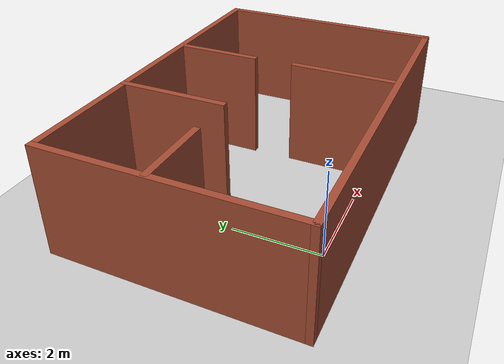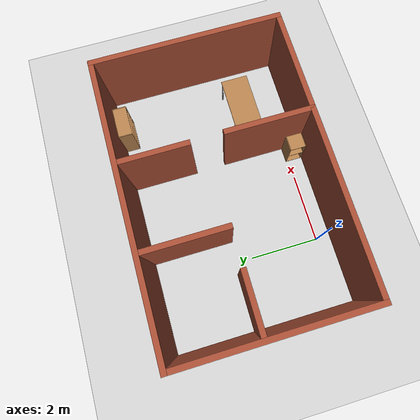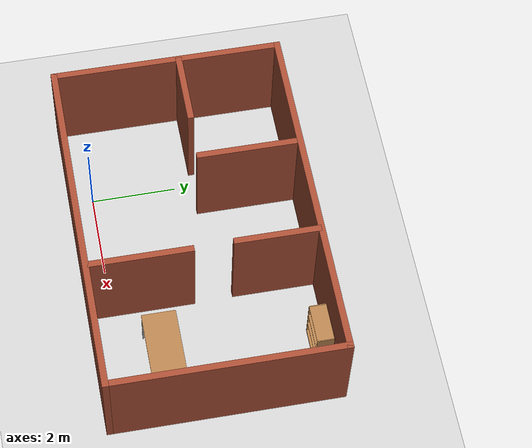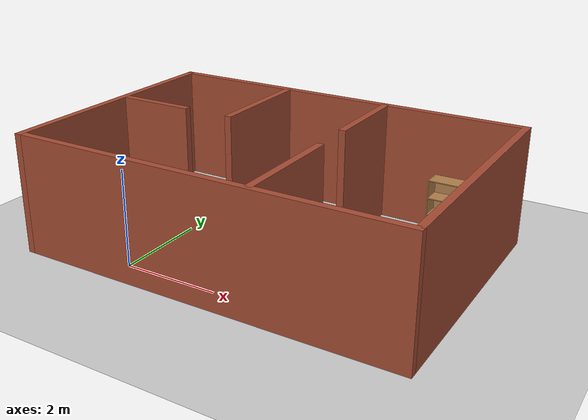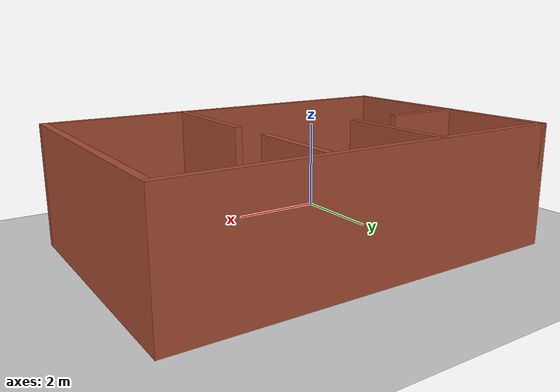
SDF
<sdf version="1.7">
 <world name="default">
  <light name="sun" type="directional">
   <pose>0 0 10 0 -0 0</pose>
   <diffuse>0.8 0.8 0.8 1</diffuse>
   <specular>0.2 0.2 0.2 1</specular>
   <attenuation>
    <range>1000</range>
    <constant>0.9</constant>
    <linear>0.01</linear>
    <quadratic>0.001</quadratic>
   </attenuation>
   <direction>-0.5 0.1 -0.9</direction>
   <spot><inner_angle>0</inner_angle><outer_angle>0</outer_angle><falloff>0</falloff></spot>
  </light>
  <model name="ground_plane">
   <static>1</static>
   <link name="link">
    <collision name="collision">
     <geometry><plane><normal>0 0 1</normal><size>100 100</size></plane></geometry>
     <surface>
      <contact><collide_bitmask>65535</collide_bitmask></contact>
      <friction><ode><mu>100</mu><mu2>50</mu2></ode></friction>
     </surface>
    </collision>
    <visual name="visual">
     <cast_shadows>0</cast_shadows>
     <geometry><plane><normal>0 0 1</normal><size>100 100</size></plane></geometry>
     <material>
      <script><uri>file://media/materials/scripts/gazebo.material</uri><name>Gazebo/Grey</name></script>
     </material>
    </visual>
   </link>
  </model>
  <gravity>0 0 -9.8</gravity>
  <magnetic_field>6e-06 2.3e-05 -4.2e-05</magnetic_field>
  <atmosphere type="adiabatic"/>
  <physics type="ode">
   <max_step_size>0.001</max_step_size>
   <real_time_factor>1</real_time_factor>
   <real_time_update_rate>1000</real_time_update_rate>
  </physics>
  <scene><ambient>0.4 0.4 0.4 1</ambient><background>0.7 0.7 0.7 1</background><shadows>1</shadows></scene>
  <spherical_coordinates>
   <surface_model>EARTH_WGS84</surface_model>
   <latitude_deg>0</latitude_deg>
   <longitude_deg>0</longitude_deg>
   <elevation>0</elevation>
   <heading_deg>0</heading_deg>
  </spherical_coordinates>
  <model name="house06">
   <pose>1.99818 2.18089 0 0 -0 0</pose>
   <link name="Wall_10">
    <collision name="Wall_10_Collision">
     <geometry><box><size>2.5 0.15 2.5</size></box></geometry>
     <pose>0 0 1.25 0 -0 0</pose>
    </collision>
    <visual name="Wall_10_Visual">
     <pose>0 0 1.25 0 -0 0</pose>
     <geometry><box><size>2.5 0.15 2.5</size></box></geometry>
     <material>
      <script><uri>file://media/materials/scripts/gazebo.material</uri><name>Gazebo/Bricks</name></script>
      <ambient>1 1 1 1</ambient>
     </material>
     <meta><layer>0</layer></meta>
    </visual>
    <pose>-1.29783 1.49783 0 0 -0 -1.5708</pose>
   </link>
   <link name="Wall_12">
    <collision name="Wall_12_Collision">
     <geometry><box><size>1.75 0.15 2.5</size></box></geometry>
     <pose>0 0 1.25 0 -0 0</pose>
    </collision>
    <visual name="Wall_12_Visual">
     <pose>0 0 1.25 0 -0 0</pose>
     <geometry><box><size>1.75 0.15 2.5</size></box></geometry>
     <material>
      <script><uri>file://media/materials/scripts/gazebo.material</uri><name>Gazebo/Bricks</name></script>
      <ambient>1 1 1 1</ambient>
     </material>
     <meta><layer>0</layer></meta>
    </visual>
    <pose>-3.21087 0.298913 0 0 -0 0</pose>
   </link>
   <link name="Wall_14">
    <collision name="Wall_14_Collision">
     <geometry><box><size>2.5 0.15 2.5</size></box></geometry>
     <pose>0 0 1.25 0 -0 0</pose>
    </collision>
    <visual name="Wall_14_Visual">
     <pose>0 0 1.25 0 -0 0</pose>
     <geometry><box><size>2.5 0.15 2.5</size></box></geometry>
     <material>
      <script><uri>file://media/materials/scripts/gazebo.material</uri><name>Gazebo/Bricks</name></script>
      <ambient>1 1 1 1</ambient>
     </material>
     <meta><layer>0</layer></meta>
    </visual>
    <pose>1.10217 -1.47391 0 0 -0 1.5708</pose>
   </link>
   <link name="Wall_16">
    <collision name="Wall_16_Collision">
     <geometry><box><size>2 0.15 2.5</size></box></geometry>
     <pose>0 0 1.25 0 -0 0</pose>
    </collision>
    <visual name="Wall_16_Visual">
     <pose>0 0 1.25 0 -0 0</pose>
     <geometry><box><size>2 0.15 2.5</size></box></geometry>
     <material>
      <script><uri>file://media/materials/scripts/gazebo.material</uri><name>Gazebo/Bricks</name></script>
      <ambient>1 1 1 1</ambient>
     </material>
     <meta><layer>0</layer></meta>
    </visual>
    <pose>1.07609 1.66956 0 0 -0 -1.5708</pose>
   </link>
   <link name="Wall_5">
    <collision name="Wall_5_Collision">
     <geometry><box><size>8.25 0.15 2.5</size></box></geometry>
     <pose>0 0 1.25 0 -0 0</pose>
    </collision>
    <visual name="Wall_5_Visual">
     <pose>0 0 1.25 0 -0 0</pose>
     <geometry><box><size>8.25 0.15 2.5</size></box></geometry>
     <material>
      <script><uri>file://media/materials/scripts/gazebo.material</uri><name>Gazebo/Bricks</name></script>
      <ambient>1 1 1 1</ambient>
     </material>
     <meta><layer>0</layer></meta>
    </visual>
    <pose>0 -2.675 0 0 -0 3.14159</pose>
   </link>
   <link name="Wall_6">
    <collision name="Wall_6_Collision">
     <geometry><box><size>5.5 0.15 2.5</size></box></geometry>
     <pose>0 0 1.25 0 -0 0</pose>
    </collision>
    <visual name="Wall_6_Visual">
     <pose>0 0 1.25 0 -0 0</pose>
     <geometry><box><size>5.5 0.15 2.5</size></box></geometry>
     <material>
      <script><uri>file://media/materials/scripts/gazebo.material</uri><name>Gazebo/Bricks</name></script>
      <ambient>1 1 1 1</ambient>
     </material>
     <meta><layer>0</layer></meta>
    </visual>
    <pose>-4.05 0 0 0 -0 1.5708</pose>
   </link>
   <link name="Wall_7">
    <collision name="Wall_7_Collision">
     <geometry><box><size>8.25 0.15 2.5</size></box></geometry>
     <pose>0 0 1.25 0 -0 0</pose>
    </collision>
    <visual name="Wall_7_Visual">
     <pose>0 0 1.25 0 -0 0</pose>
     <geometry><box><size>8.25 0.15 2.5</size></box></geometry>
     <material>
      <script><uri>file://media/materials/scripts/gazebo.material</uri><name>Gazebo/Bricks</name></script>
      <ambient>1 1 1 1</ambient>
     </material>
     <meta><layer>0</layer></meta>
    </visual>
    <pose>0 2.675 0 0 -0 0</pose>
   </link>
   <link name="Wall_8">
    <collision name="Wall_8_Collision">
     <geometry><box><size>5.5 0.15 2.5</size></box></geometry>
     <pose>0 0 1.25 0 -0 0</pose>
    </collision>
    <visual name="Wall_8_Visual">
     <pose>0 0 1.25 0 -0 0</pose>
     <geometry><box><size>5.5 0.15 2.5</size></box></geometry>
     <material>
      <script><uri>file://media/materials/scripts/gazebo.material</uri><name>Gazebo/Bricks</name></script>
      <ambient>1 1 1 1</ambient>
     </material>
     <meta><layer>0</layer></meta>
    </visual>
    <pose>4.05 0 0 0 -0 -1.5708</pose>
   </link>
   <static>1</static>
  </model>
  <model name="cabinet">
   <static>1</static>
   <link name="cabinet_bottom_plate">
    <inertial>
     <pose>0 0 -1 0 -0 0</pose>
     <inertia><ixx>2.05</ixx><ixy>0</ixy><ixz>0</ixz><iyy>2.05</iyy><iyz>0</iyz><izz>2.05</izz></inertia>
     <mass>25</mass>
    </inertial>
    <collision name="cabinet_bottom_plate_geom">
     <pose>0 0 0.01 0 -0 0</pose>
     <geometry><box><size>0.45 0.45 0.02</size></box></geometry>
    </collision>
    <visual name="cabinet_bottom_plate_geom_visual">
     <pose>0 0 0.01 0 -0 0</pose>
     <geometry><box><size>0.45 0.45 0.02</size></box></geometry>
     <material>
      <script><uri>file://media/materials/scripts/gazebo.material</uri><name>Gazebo/Wood</name></script>
     </material>
    </visual>
    <collision name="cabinet_bottom_plate_geom_cabinet_back_plate">
     <pose>0.235 0 0.51 0 -0 0</pose>
     <geometry><box><size>0.02 0.45 1.02</size></box></geometry>
    </collision>
    <visual name="cabinet_bottom_plate_geom_cabinet_back_plate_visual">
     <pose>0.235 0 0.51 0 -0 0</pose>
     <geometry><box><size>0.02 0.45 1.02</size></box></geometry>
     <material>
      <script><uri>file://media/materials/scripts/gazebo.material</uri><name>Gazebo/Wood</name></script>
     </material>
    </visual>
    <collision name="cabinet_bottom_plate_geom_cabinet_left_plate">
     <pose>0 0.235 0.51 0 -0 0</pose>
     <geometry><box><size>0.45 0.02 1.02</size></box></geometry>
    </collision>
    <visual name="cabinet_bottom_plate_geom_cabinet_left_plate_visual">
     <pose>0 0.235 0.51 0 -0 0</pose>
     <geometry><box><size>0.45 0.02 1.02</size></box></geometry>
     <material>
      <script><uri>file://media/materials/scripts/gazebo.material</uri><name>Gazebo/Wood</name></script>
     </material>
    </visual>
    <collision name="cabinet_bottom_plate_geom_cabinet_middle_plate">
     <pose>0 0 0.51 0 -0 0</pose>
     <geometry><box><size>0.45 0.45 0.02</size></box></geometry>
    </collision>
    <visual name="cabinet_bottom_plate_geom_cabinet_middle_plate_visual">
     <pose>0 0 0.51 0 -0 0</pose>
     <geometry><box><size>0.45 0.45 0.02</size></box></geometry>
     <material>
      <script><uri>file://media/materials/scripts/gazebo.material</uri><name>Gazebo/Wood</name></script>
     </material>
    </visual>
    <collision name="cabinet_bottom_plate_geom_cabinet_right_plate">
     <pose>0 -0.235 0.51 0 -0 0</pose>
     <geometry><box><size>0.45 0.02 1.02</size></box></geometry>
    </collision>
    <visual name="cabinet_bottom_plate_geom_cabinet_right_plate_visual">
     <pose>0 -0.235 0.51 0 -0 0</pose>
     <geometry><box><size>0.45 0.02 1.02</size></box></geometry>
     <material>
      <script><uri>file://media/materials/scripts/gazebo.material</uri><name>Gazebo/Wood</name></script>
     </material>
    </visual>
    <collision name="cabinet_bottom_plate_geom_cabinet_top_plate">
     <pose>0 0 1.01 0 -0 0</pose>
     <geometry><box><size>0.45 0.45 0.02</size></box></geometry>
    </collision>
    <visual name="cabinet_bottom_plate_geom_cabinet_top_plate_visual">
     <pose>0 0 1.01 0 -0 0</pose>
     <geometry><box><size>0.45 0.45 0.02</size></box></geometry>
     <material>
      <script><uri>file://media/materials/scripts/gazebo.material</uri><name>Gazebo/Wood</name></script>
     </material>
    </visual>
   </link>
   <pose>2.80831 -0.156932 0 0 -0 0</pose>
  </model>
  <model name="table">
   <static>1</static>
   <link name="link">
    <collision name="surface">
     <pose>0 0 1 0 -0 0</pose>
     <geometry><box><size>1.5 0.8 0.03</size></box></geometry>
     <surface><friction><ode><mu>0.6</mu><mu2>0.6</mu2></ode></friction></surface>
    </collision>
    <visual name="visual1">
     <pose>0 0 1 0 -0 0</pose>
     <geometry><box><size>1.5 0.8 0.03</size></box></geometry>
     <material>
      <script><uri>file://media/materials/scripts/gazebo.material</uri><name>Gazebo/Wood</name></script>
     </material>
    </visual>
    <collision name="front_left_leg">
     <pose>0.68 0.38 0.5 0 -0 0</pose>
     <geometry><cylinder><radius>0.02</radius><length>1</length></cylinder></geometry>
    </collision>
    <visual name="front_left_leg">
     <pose>0.68 0.38 0.5 0 -0 0</pose>
     <geometry><cylinder><radius>0.02</radius><length>1</length></cylinder></geometry>
     <material>
      <script><uri>file://media/materials/scripts/gazebo.material</uri><name>Gazebo/Grey</name></script>
     </material>
    </visual>
    <collision name="front_right_leg">
     <pose>0.68 -0.38 0.5 0 -0 0</pose>
     <geometry><cylinder><radius>0.02</radius><length>1</length></cylinder></geometry>
    </collision>
    <visual name="front_right_leg">
     <pose>0.68 -0.38 0.5 0 -0 0</pose>
     <geometry><cylinder><radius>0.02</radius><length>1</length></cylinder></geometry>
     <material>
      <script><uri>file://media/materials/scripts/gazebo.material</uri><name>Gazebo/Grey</name></script>
     </material>
    </visual>
    <collision name="back_right_leg">
     <pose>-0.68 -0.38 0.5 0 -0 0</pose>
     <geometry><cylinder><radius>0.02</radius><length>1</length></cylinder></geometry>
    </collision>
    <visual name="back_right_leg">
     <pose>-0.68 -0.38 0.5 0 -0 0</pose>
     <geometry><cylinder><radius>0.02</radius><length>1</length></cylinder></geometry>
     <material>
      <script><uri>file://media/materials/scripts/gazebo.material</uri><name>Gazebo/Grey</name></script>
     </material>
    </visual>
    <collision name="back_left_leg">
     <pose>-0.68 0.38 0.5 0 -0 0</pose>
     <geometry><cylinder><radius>0.02</radius><length>1</length></cylinder></geometry>
    </collision>
    <visual name="back_left_leg">
     <pose>-0.68 0.38 0.5 0 -0 0</pose>
     <geometry><cylinder><radius>0.02</radius><length>1</length></cylinder></geometry>
     <material>
      <script><uri>file://media/materials/scripts/gazebo.material</uri><name>Gazebo/Grey</name></script>
     </material>
    </visual>
   </link>
   <pose>4.53755 1.00448 0 0 -0 0</pose>
  </model>
  <model name="bookshelf">
   <static>1</static>
   <link name="link">
    <inertial><mass>1</mass></inertial>
    <collision name="back">
     <pose>0 0.005 0.6 0 -0 0</pose>
     <geometry><box><size>0.9 0.01 1.2</size></box></geometry>
    </collision>
    <visual name="visual1">
     <pose>0 0.005 0.6 0 -0 0</pose>
     <geometry><box><size>0.9 0.01 1.2</size></box></geometry>
     <material>
      <script><uri>file://media/materials/scripts/gazebo.material</uri><name>Gazebo/Wood</name></script>
     </material>
    </visual>
    <collision name="left_side">
     <pose>0.45 -0.195 0.6 0 -0 0</pose>
     <geometry><box><size>0.02 0.4 1.2</size></box></geometry>
    </collision>
    <visual name="visual2">
     <pose>0.45 -0.195 0.6 0 -0 0</pose>
     <geometry><box><size>0.02 0.4 1.2</size></box></geometry>
     <material>
      <script><uri>file://media/materials/scripts/gazebo.material</uri><name>Gazebo/Wood</name></script>
     </material>
    </visual>
    <collision name="right_side">
     <pose>-0.45 -0.195 0.6 0 -0 0</pose>
     <geometry><box><size>0.02 0.4 1.2</size></box></geometry>
    </collision>
    <visual name="visual3">
     <pose>-0.45 -0.195 0.6 0 -0 0</pose>
     <geometry><box><size>0.02 0.4 1.2</size></box></geometry>
     <material>
      <script><uri>file://media/materials/scripts/gazebo.material</uri><name>Gazebo/Wood</name></script>
     </material>
    </visual>
    <collision name="bottom">
     <pose>0 -0.195 0.03 0 -0 0</pose>
     <geometry><box><size>0.88 0.4 0.06</size></box></geometry>
    </collision>
    <visual name="visual4">
     <pose>0 -0.195 0.03 0 -0 0</pose>
     <geometry><box><size>0.88 0.4 0.06</size></box></geometry>
     <material>
      <script><uri>file://media/materials/scripts/gazebo.material</uri><name>Gazebo/Wood</name></script>
     </material>
    </visual>
    <collision name="top">
     <pose>0 -0.195 1.19 0 -0 0</pose>
     <geometry><box><size>0.88 0.4 0.02</size></box></geometry>
    </collision>
    <visual name="visual5">
     <pose>0 -0.195 1.19 0 -0 0</pose>
     <geometry><box><size>0.88 0.4 0.02</size></box></geometry>
     <material>
      <script><uri>file://media/materials/scripts/gazebo.material</uri><name>Gazebo/Wood</name></script>
     </material>
    </visual>
    <collision name="low_shelf">
     <pose>0 -0.195 0.43 0 -0 0</pose>
     <geometry><box><size>0.88 0.4 0.02</size></box></geometry>
    </collision>
    <visual name="visual6">
     <pose>0 -0.195 0.43 0 -0 0</pose>
     <geometry><box><size>0.88 0.4 0.02</size></box></geometry>
     <material>
      <script><uri>file://media/materials/scripts/gazebo.material</uri><name>Gazebo/Wood</name></script>
     </material>
    </visual>
    <collision name="high_shelf">
     <pose>0 -0.195 0.8 0 -0 0</pose>
     <geometry><box><size>0.88 0.4 0.02</size></box></geometry>
    </collision>
    <visual name="visual7">
     <pose>0 -0.195 0.8 0 -0 0</pose>
     <geometry><box><size>0.88 0.4 0.02</size></box></geometry>
     <material>
      <script><uri>file://media/materials/scripts/gazebo.material</uri><name>Gazebo/Wood</name></script>
     </material>
    </visual>
   </link>
   <pose>4.76984 4.77262 0 0 -0 0</pose>
  </model>
 </world>
</sdf>
